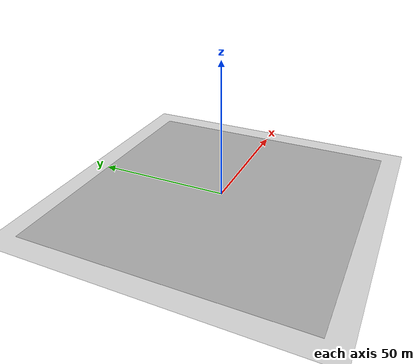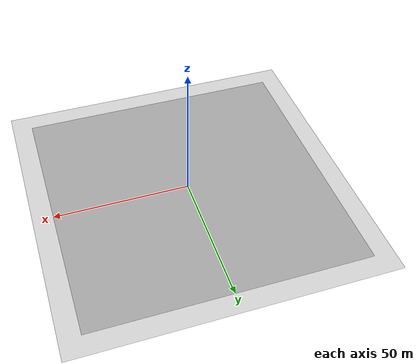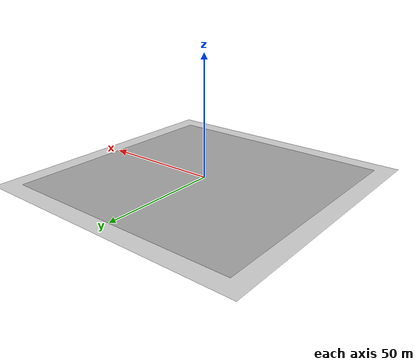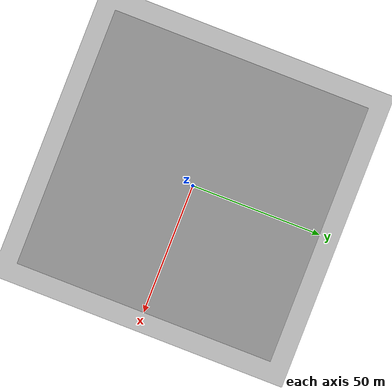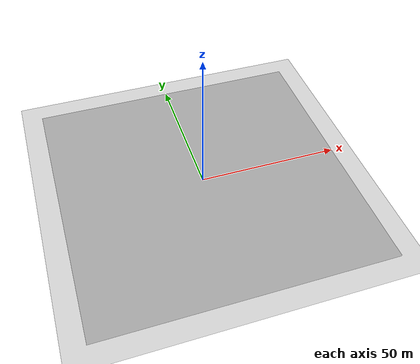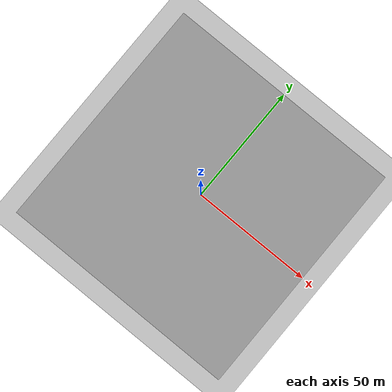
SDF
<?xml version="1.0" ?>
<sdf version="1.8">
  <world name="x500_follow_world">

    <!-- GUI Configuration with Camera Tracking -->
    <gui fullscreen="0">
      <camera name="user_camera">
        <!-- Initial camera pose: slightly behind and above origin -->
        <pose>-8 0 6 0 0.4 0</pose>

        <!-- Track visual configuration -->
        <track_visual>
          <name>x500</name>                    <!-- Model name to track -->
          <static>true</static>                <!-- Fixed relative position -->
          <use_model_frame>true</use_model_frame>  <!-- Position relative to model -->
          <xyz>-5 0 2.5</xyz>                 <!-- 5m behind, 2.5m above drone -->
          <inherit_yaw>true</inherit_yaw>     <!-- Camera rotates with drone -->
        </track_visual>
      </camera>
    </gui>

    <!-- Physics engine -->
    <physics name="1ms" type="ignored">
      <max_step_size>0.001</max_step_size>
      <real_time_factor>1.0</real_time_factor>
    </physics>

    <!-- Plugins required for PX4 -->
    <plugin filename="gz-sim-physics-system" name="gz::sim::systems::Physics"/>
    <plugin filename="gz-sim-user-commands-system" name="gz::sim::systems::UserCommands"/>
    <plugin filename="gz-sim-scene-broadcaster-system" name="gz::sim::systems::SceneBroadcaster"/>
    <plugin filename="gz-sim-imu-system" name="gz::sim::systems::Imu"/>
    <plugin filename="gz-sim-magnetometer-system" name="gz::sim::systems::Magnetometer"/>
    <plugin filename="gz-sim-air-pressure-system" name="gz::sim::systems::AirPressure"/>

    <!-- Lighting -->
    <light type="directional" name="sun">
      <cast_shadows>true</cast_shadows>
      <pose>0 0 10 0 0 0</pose>
      <diffuse>0.8 0.8 0.8 1</diffuse>
      <specular>0.2 0.2 0.2 1</specular>
      <attenuation>
        <range>1000</range>
        <constant>0.9</constant>
        <linear>0.01</linear>
        <quadratic>0.001</quadratic>
      </attenuation>
      <direction>-0.5 0.1 -0.9</direction>
    </light>

    <!-- Ground plane -->
    <model name="ground_plane">
      <static>true</static>
      <link name="link">
        <collision name="collision">
          <geometry>
            <plane>
              <normal>0 0 1</normal>
              <size>100 100</size>
            </plane>
          </geometry>
        </collision>
        <visual name="visual">
          <geometry>
            <plane>
              <normal>0 0 1</normal>
              <size>100 100</size>
            </plane>
          </geometry>
          <material>
            <ambient>0.8 0.8 0.8 1</ambient>
            <diffuse>0.8 0.8 0.8 1</diffuse>
            <specular>0.8 0.8 0.8 1</specular>
          </material>
        </visual>
      </link>
    </model>

    <!-- Grid pattern for reference -->
    <model name="grid">
      <static>true</static>
      <pose>0 0 0.01 0 0 0</pose>
      <link name="link">
        <visual name="visual">
          <cast_shadows>false</cast_shadows>
          <geometry>
            <plane>
              <normal>0 0 1</normal>
              <size>100 100</size>
            </plane>
          </geometry>
          <material>
            <ambient>0.5 0.5 0.5 0.5</ambient>
            <diffuse>0.5 0.5 0.5 0.5</diffuse>
            <specular>0.1 0.1 0.1 0.5</specular>
          </material>
        </visual>
      </link>
    </model>

  </world>
</sdf>
